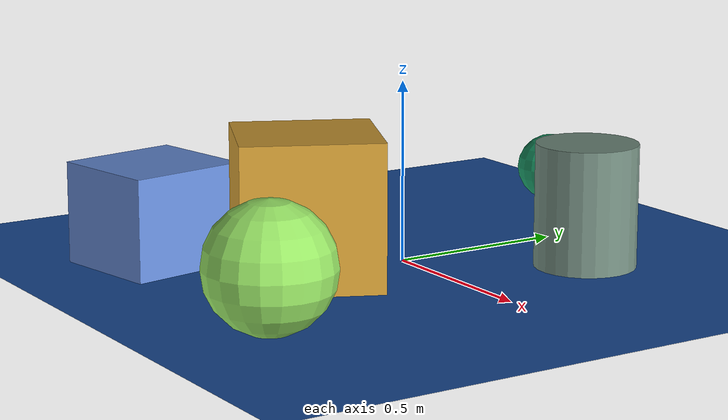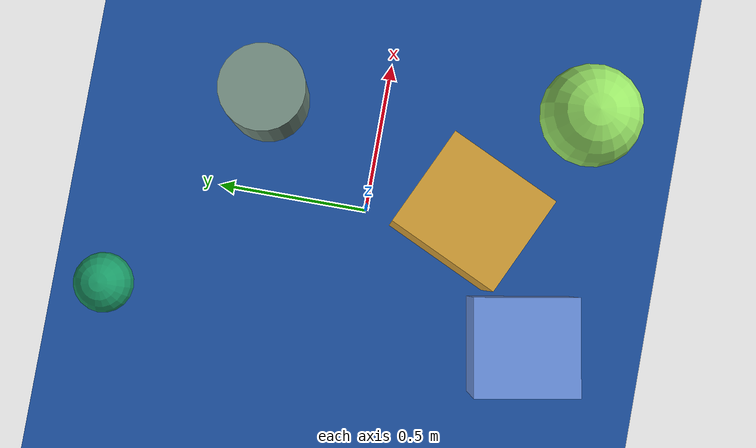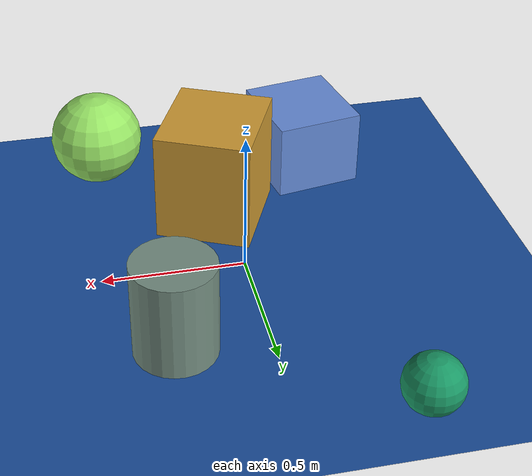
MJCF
<mujoco>
   <asset>
<texture type="skybox" builtin="gradient" rgb1="0.1 0.9 0.6" rgb2="0.6 0.5 0.4" width="256" height="256"/>
<texture name="checker_0" builtin="checker" rgb1="0.5 0.4 1.0" rgb2="0.3 0.7 0.7" width="200" height="200"/>
<texture name="flat_1" builtin="flat" rgb1="0.8 0.6 0.2" rgb2="0.8 0.6 0.2"  width="200" height="200"/>
<texture name="checker_2" builtin="checker" rgb1="0.2 0.4 0.1" rgb2="0.0 0.8 0.7" width="200" height="200"/>
<texture name="flat_3" builtin="flat" rgb1="0.6 0.9 0.4" rgb2="0.6 0.9 0.4"  width="200" height="200"/>
<texture name="gradient_4" builtin="gradient" rgb1="0.6 0.7 0.0" rgb2="0.3 0.4 1.0" width="200" height="200"/><material name="checker_0_mat" reflectance="0" texrepeat="6 6" texture="checker_0" texuniform="false" />
<material name="flat_1_mat" reflectance="0" texture="flat_1" texuniform="true"/>
<material name="checker_2_mat" reflectance="0" texrepeat="7 7" texture="checker_2" texuniform="false" />
<material name="flat_3_mat" reflectance="0" texture="flat_3" texuniform="true"/>
<material name="gradient_4_mat" reflectance="0" texture="gradient_4" texuniform="true"/>
   </asset>

   <worldbody>
      <light diffuse=".9 .9 .9" pos="0 0 3" dir="0 0 -1"/>
     <geom type="plane" size="1 1 0.1" rgba="0.1 0.3 0.6 1"/>
<geom type="box" pos="-0.35 -0.58 0.14" size="0.16 0.17 0.14" material="checker_0_mat" euler="0 0 10" />
<geom type="box" pos="0.04 -0.33 0.2" size="0.19 0.17 0.2" material="flat_1_mat" euler="0 0 65" />
<geom type="sphere" pos="-0.39 0.81 0.1" size="0.1 0.1 0.1" material="checker_2_mat" euler="0 0 35" />
<geom type="sphere" pos="0.43 -0.67 0.17" size="0.17 0.17 0.17" material="flat_3_mat" euler="0 0 52" />
<geom type="cylinder" pos="0.31 0.39 0.17" size="0.14 0.17 0.17" material="gradient_4_mat" euler="0 0 18" /><camera euler="60 0 180" fovy="60" name="camera1" pos="-0.2 -1.5 1"></camera>   </worldbody>
</mujoco>
